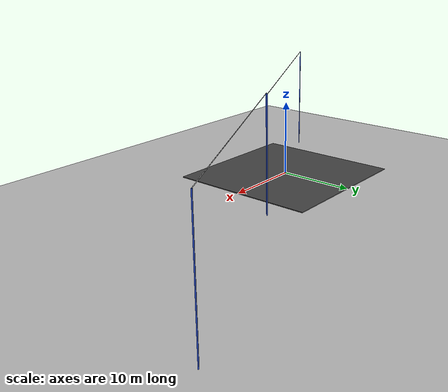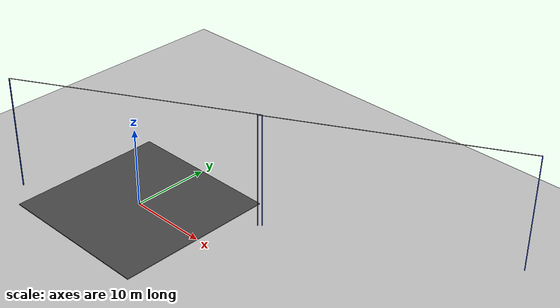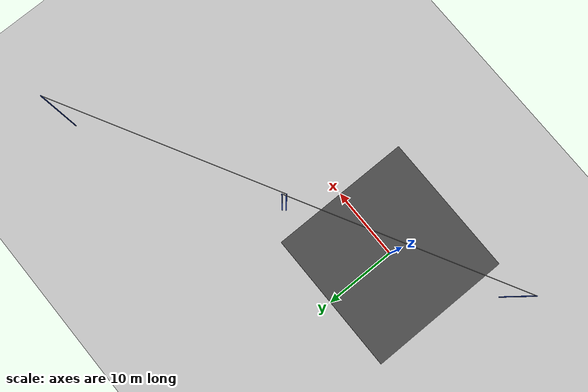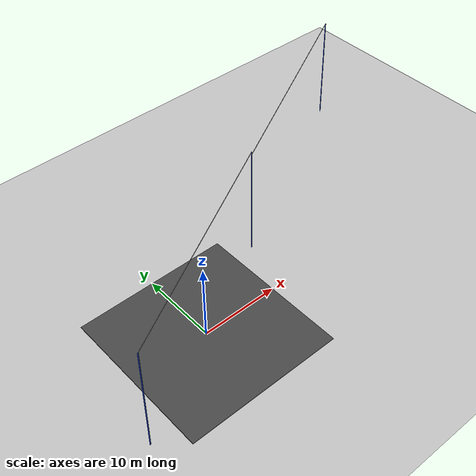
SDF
<sdf version="1.6">
 <world name="default">
  <light name="sun" type="directional">
   <pose>0 0 10 0 -0 0</pose>
   <diffuse>0.8 0.8 0.8 1</diffuse>
   <specular>0.2 0.2 0.2 1</specular>
   <attenuation>
    <range>1000</range>
    <constant>0.9</constant>
    <linear>0.01</linear>
    <quadratic>0.001</quadratic>
   </attenuation>
   <direction>-0.5 0.1 -0.9</direction>
  </light>
  <model name="ground_plane">
   <static>1</static>
   <link name="link">
    <collision name="collision">
     <geometry><plane><normal>0 0 1</normal><size>100 100</size></plane></geometry>
     <surface>
      <contact><collide_bitmask>65535</collide_bitmask></contact>
      <friction><ode><mu>100</mu><mu2>50</mu2></ode></friction>
     </surface>
    </collision>
    <visual name="visual">
     <cast_shadows>0</cast_shadows>
     <geometry><plane><normal>0 0 1</normal><size>100 100</size></plane></geometry>
     <material>
      <script><uri>file://media/materials/scripts/gazebo.material</uri><name>Gazebo/Grey</name></script>
     </material>
    </visual>
   </link>
  </model>
  <model name="asphalt_plane">
   <static>1</static>
   <link name="link">
    <collision name="collision"><geometry><box><size>20 20 0.1</size></box></geometry></collision>
    <visual name="visual">
     <cast_shadows>0</cast_shadows>
     <geometry><box><size>20 20 0.1</size></box></geometry>
     <material>
      <script>
       <uri>model://asphalt_plane/materials/scripts</uri>
       <uri>model://asphalt_plane/materials/textures</uri>
       <name>vrc/asphalt</name>
      </script>
     </material>
    </visual>
   </link>
  </model>
  <physics name="default_physics" default="0" type="ode">
   <ode>
    <solver>
     <type>quick</type>
     <iters>10</iters>
     <sor>1.3</sor>
     <use_dynamic_moi_rescaling>0</use_dynamic_moi_rescaling>
    </solver>
    <constraints>
     <cfm>0</cfm>
     <erp>0.2</erp>
     <contact_max_correcting_vel>100</contact_max_correcting_vel>
     <contact_surface_layer>0.001</contact_surface_layer>
    </constraints>
   </ode>
   <max_step_size>0.004</max_step_size>
   <real_time_factor>1</real_time_factor>
   <real_time_update_rate>250</real_time_update_rate>
  </physics>
  <gravity>0 0 -9.8066</gravity>
  <magnetic_field>6e-06 2.3e-05 -4.2e-05</magnetic_field>
  <atmosphere type="adiabatic"/>
  <scene><ambient>0.4 0.4 0.4 1</ambient><background>0.7 0.7 0.7 1</background><shadows>1</shadows></scene>
  <spherical_coordinates>
   <surface_model>EARTH_WGS84</surface_model>
   <latitude_deg>0</latitude_deg>
   <longitude_deg>0</longitude_deg>
   <elevation>0</elevation>
   <heading_deg>0</heading_deg>
  </spherical_coordinates>
  <model name="Powerline1">
   <link name="link">
    <inertial>
     <mass>0.240742</mass>
     <inertia>
      <ixx>3.38863</ixx>
      <ixy>0</ixy>
      <ixz>0</ixz>
      <iyy>3.38889</iyy>
      <iyz>0</iyz>
      <izz>0.00078828</izz>
     </inertia>
    </inertial>
    <pose>-15 0 7 0 -0 0</pose>
    <visual name="visual">
     <geometry><box><size>0.1 0.1 15</size></box></geometry>
     <material>
      <script><name>Gazebo/Blue</name><uri>file://media/materials/scripts/gazebo.material</uri></script>
      <shader type="pixel"><normal_map>__default__</normal_map></shader>
      <ambient>0.3 0.3 0.3 1</ambient>
      <diffuse>0.7 0.7 0.7 1</diffuse>
      <specular>0.01 0.01 0.01 1</specular>
      <emissive>0 0 0 1</emissive>
     </material>
    </visual>
    <collision name="collision">
     <geometry><box><size>0.1 0.1 15</size></box></geometry>
     <surface>
      <friction>
       <ode><mu>1</mu><mu2>1</mu2><fdir1>0 0 0</fdir1><slip1>0</slip1><slip2>0</slip2></ode>
       <torsional>
        <coefficient>1</coefficient>
        <patch_radius>0</patch_radius>
        <surface_radius>0</surface_radius>
        <use_patch_radius>1</use_patch_radius>
        <ode><slip>0</slip></ode>
       </torsional>
      </friction>
      <bounce><restitution_coefficient>0</restitution_coefficient><threshold>1e+06</threshold></bounce>
      <contact>
       <collide_without_contact>0</collide_without_contact>
       <collide_without_contact_bitmask>1</collide_without_contact_bitmask>
       <collide_bitmask>1</collide_bitmask>
       <ode>
        <soft_cfm>0</soft_cfm>
        <soft_erp>0.2</soft_erp>
        <kp>1e+13</kp>
        <kd>1</kd>
        <max_vel>0.01</max_vel>
        <min_depth>0</min_depth>
       </ode>
       <bullet>
        <split_impulse>1</split_impulse>
        <split_impulse_penetration_threshold>-0.01</split_impulse_penetration_threshold>
        <soft_cfm>0</soft_cfm>
        <soft_erp>0.2</soft_erp>
        <kp>1e+13</kp>
        <kd>1</kd>
       </bullet>
      </contact>
     </surface>
    </collision>
   </link>
   <link name="link_0">
    <inertial>
     <mass>1</mass>
     <inertia><ixx>0.145833</ixx><ixy>0</ixy><ixz>0</ixz><iyy>0.145833</iyy><iyz>0</iyz><izz>0.125</izz></inertia>
    </inertial>
    <pose>0 0 14.5 0 -1.56987 0</pose>
    <visual name="visual">
     <geometry><cylinder><radius>0.035</radius><length>30</length></cylinder></geometry>
     <material>
      <lighting>1</lighting>
      <script><uri>file://media/materials/scripts/gazebo.material</uri><name>Gazebo/Grey</name></script>
      <shader type="pixel"><normal_map>__default__</normal_map></shader>
      <ambient>0.3 0.3 0.3 1</ambient>
      <diffuse>0.7 0.7 0.7 1</diffuse>
      <specular>0.01 0.01 0.01 1</specular>
      <emissive>0 0 0 1</emissive>
     </material>
    </visual>
    <collision name="collision">
     <geometry><cylinder><radius>0.035</radius><length>30</length></cylinder></geometry>
     <surface>
      <friction>
       <ode><mu>1</mu><mu2>1</mu2><fdir1>0 0 0</fdir1><slip1>0</slip1><slip2>0</slip2></ode>
       <torsional>
        <coefficient>1</coefficient>
        <patch_radius>0</patch_radius>
        <surface_radius>0</surface_radius>
        <use_patch_radius>1</use_patch_radius>
        <ode><slip>0</slip></ode>
       </torsional>
      </friction>
      <bounce><restitution_coefficient>0</restitution_coefficient><threshold>1e+06</threshold></bounce>
      <contact>
       <collide_without_contact>0</collide_without_contact>
       <collide_without_contact_bitmask>1</collide_without_contact_bitmask>
       <collide_bitmask>1</collide_bitmask>
       <ode>
        <soft_cfm>0</soft_cfm>
        <soft_erp>0.2</soft_erp>
        <kp>1e+13</kp>
        <kd>1</kd>
        <max_vel>0.01</max_vel>
        <min_depth>0</min_depth>
       </ode>
       <bullet>
        <split_impulse>1</split_impulse>
        <split_impulse_penetration_threshold>-0.01</split_impulse_penetration_threshold>
        <soft_cfm>0</soft_cfm>
        <soft_erp>0.2</soft_erp>
        <kp>1e+13</kp>
        <kd>1</kd>
       </bullet>
      </contact>
     </surface>
    </collision>
   </link>
   <link name="link_clone">
    <inertial>
     <mass>0.240742</mass>
     <inertia>
      <ixx>3.38863</ixx>
      <ixy>0</ixy>
      <ixz>0</ixz>
      <iyy>3.38889</iyy>
      <iyz>0</iyz>
      <izz>0.00078828</izz>
     </inertia>
    </inertial>
    <pose>15 0 7 1e-05 -0 0</pose>
    <visual name="visual">
     <geometry><box><size>0.1 0.1 15</size></box></geometry>
     <material>
      <script><name>Gazebo/Blue</name><uri>file://media/materials/scripts/gazebo.material</uri></script>
      <shader type="pixel"><normal_map>__default__</normal_map></shader>
      <ambient>0.3 0.3 0.3 1</ambient>
      <diffuse>0.7 0.7 0.7 1</diffuse>
      <specular>0.01 0.01 0.01 1</specular>
      <emissive>0 0 0 1</emissive>
     </material>
    </visual>
    <collision name="collision">
     <geometry><box><size>0.1 0.1 15</size></box></geometry>
     <surface>
      <friction>
       <ode><mu>1</mu><mu2>1</mu2><fdir1>0 0 0</fdir1><slip1>0</slip1><slip2>0</slip2></ode>
       <torsional>
        <coefficient>1</coefficient>
        <patch_radius>0</patch_radius>
        <surface_radius>0</surface_radius>
        <use_patch_radius>1</use_patch_radius>
        <ode><slip>0</slip></ode>
       </torsional>
      </friction>
      <bounce><restitution_coefficient>0</restitution_coefficient><threshold>1e+06</threshold></bounce>
      <contact>
       <collide_without_contact>0</collide_without_contact>
       <collide_without_contact_bitmask>1</collide_without_contact_bitmask>
       <collide_bitmask>1</collide_bitmask>
       <ode>
        <soft_cfm>0</soft_cfm>
        <soft_erp>0.2</soft_erp>
        <kp>1e+13</kp>
        <kd>1</kd>
        <max_vel>0.01</max_vel>
        <min_depth>0</min_depth>
       </ode>
       <bullet>
        <split_impulse>1</split_impulse>
        <split_impulse_penetration_threshold>-0.01</split_impulse_penetration_threshold>
        <soft_cfm>0</soft_cfm>
        <soft_erp>0.2</soft_erp>
        <kp>1e+13</kp>
        <kd>1</kd>
       </bullet>
      </contact>
     </surface>
    </collision>
   </link>
   <joint name="link_0_JOINT_0" type="fixed">
    <parent>link_0</parent>
    <child>link</child>
    <physics>
     <ode><limit><cfm>0</cfm><erp>0.2</erp></limit><suspension><cfm>0</cfm><erp>0.2</erp></suspension></ode>
    </physics>
   </joint>
   <joint name="link_0_JOINT_1" type="revolute">
    <parent>link_0</parent>
    <child>link_clone</child>
    <axis>
     <xyz>1 0 0</xyz>
     <use_parent_model_frame>0</use_parent_model_frame>
     <limit>
      <lower>-1.79769e+308</lower>
      <upper>1.79769e+308</upper>
      <effort>-1</effort>
      <velocity>-1</velocity>
     </limit>
     <dynamics>
      <spring_reference>0</spring_reference>
      <spring_stiffness>0</spring_stiffness>
      <damping>0</damping>
     </dynamics>
    </axis>
    <physics>
     <ode><limit><cfm>0</cfm><erp>0.2</erp></limit><suspension><cfm>0</cfm><erp>0.2</erp></suspension></ode>
    </physics>
   </joint>
   <static>1</static>
   <pose>3.8e-05 3e-06 0 0 -0 0.5</pose>
  </model>
  <model name="Powerline1_clone">
   <link name="link">
    <inertial>
     <mass>0.240742</mass>
     <inertia>
      <ixx>3.38863</ixx>
      <ixy>0</ixy>
      <ixz>0</ixz>
      <iyy>3.38889</iyy>
      <iyz>0</iyz>
      <izz>0.00078828</izz>
     </inertia>
    </inertial>
    <pose>-15 0 7 0 -0 0</pose>
    <visual name="visual">
     <geometry><box><size>0.1 0.1 15</size></box></geometry>
     <material>
      <script><name>Gazebo/Blue</name><uri>file://media/materials/scripts/gazebo.material</uri></script>
      <shader type="pixel"><normal_map>__default__</normal_map></shader>
      <ambient>0.3 0.3 0.3 1</ambient>
      <diffuse>0.7 0.7 0.7 1</diffuse>
      <specular>0.01 0.01 0.01 1</specular>
      <emissive>0 0 0 1</emissive>
     </material>
    </visual>
    <collision name="collision">
     <geometry><box><size>0.1 0.1 15</size></box></geometry>
     <surface>
      <friction>
       <ode><mu>1</mu><mu2>1</mu2><fdir1>0 0 0</fdir1><slip1>0</slip1><slip2>0</slip2></ode>
       <torsional>
        <coefficient>1</coefficient>
        <patch_radius>0</patch_radius>
        <surface_radius>0</surface_radius>
        <use_patch_radius>1</use_patch_radius>
        <ode><slip>0</slip></ode>
       </torsional>
      </friction>
      <bounce><restitution_coefficient>0</restitution_coefficient><threshold>1e+06</threshold></bounce>
      <contact>
       <collide_without_contact>0</collide_without_contact>
       <collide_without_contact_bitmask>1</collide_without_contact_bitmask>
       <collide_bitmask>1</collide_bitmask>
       <ode>
        <soft_cfm>0</soft_cfm>
        <soft_erp>0.2</soft_erp>
        <kp>1e+13</kp>
        <kd>1</kd>
        <max_vel>0.01</max_vel>
        <min_depth>0</min_depth>
       </ode>
       <bullet>
        <split_impulse>1</split_impulse>
        <split_impulse_penetration_threshold>-0.01</split_impulse_penetration_threshold>
        <soft_cfm>0</soft_cfm>
        <soft_erp>0.2</soft_erp>
        <kp>1e+13</kp>
        <kd>1</kd>
       </bullet>
      </contact>
     </surface>
    </collision>
   </link>
   <link name="link_0">
    <inertial>
     <mass>1</mass>
     <inertia><ixx>0.145833</ixx><ixy>0</ixy><ixz>0</ixz><iyy>0.145833</iyy><iyz>0</iyz><izz>0.125</izz></inertia>
    </inertial>
    <pose>0 0 14.5 0 -1.56987 0</pose>
    <visual name="visual">
     <geometry><cylinder><radius>0.035</radius><length>30</length></cylinder></geometry>
     <material>
      <lighting>1</lighting>
      <script><uri>file://media/materials/scripts/gazebo.material</uri><name>Gazebo/Grey</name></script>
      <shader type="pixel"><normal_map>__default__</normal_map></shader>
      <ambient>0.3 0.3 0.3 1</ambient>
      <diffuse>0.7 0.7 0.7 1</diffuse>
      <specular>0.01 0.01 0.01 1</specular>
      <emissive>0 0 0 1</emissive>
     </material>
    </visual>
    <collision name="collision">
     <geometry><cylinder><radius>0.035</radius><length>30</length></cylinder></geometry>
     <surface>
      <friction>
       <ode><mu>1</mu><mu2>1</mu2><fdir1>0 0 0</fdir1><slip1>0</slip1><slip2>0</slip2></ode>
       <torsional>
        <coefficient>1</coefficient>
        <patch_radius>0</patch_radius>
        <surface_radius>0</surface_radius>
        <use_patch_radius>1</use_patch_radius>
        <ode><slip>0</slip></ode>
       </torsional>
      </friction>
      <bounce><restitution_coefficient>0</restitution_coefficient><threshold>1e+06</threshold></bounce>
      <contact>
       <collide_without_contact>0</collide_without_contact>
       <collide_without_contact_bitmask>1</collide_without_contact_bitmask>
       <collide_bitmask>1</collide_bitmask>
       <ode>
        <soft_cfm>0</soft_cfm>
        <soft_erp>0.2</soft_erp>
        <kp>1e+13</kp>
        <kd>1</kd>
        <max_vel>0.01</max_vel>
        <min_depth>0</min_depth>
       </ode>
       <bullet>
        <split_impulse>1</split_impulse>
        <split_impulse_penetration_threshold>-0.01</split_impulse_penetration_threshold>
        <soft_cfm>0</soft_cfm>
        <soft_erp>0.2</soft_erp>
        <kp>1e+13</kp>
        <kd>1</kd>
       </bullet>
      </contact>
     </surface>
    </collision>
   </link>
   <link name="link_clone">
    <inertial>
     <mass>0.240742</mass>
     <inertia>
      <ixx>3.38863</ixx>
      <ixy>0</ixy>
      <ixz>0</ixz>
      <iyy>3.38889</iyy>
      <iyz>0</iyz>
      <izz>0.00078828</izz>
     </inertia>
    </inertial>
    <pose>15 0 7 1e-05 -0 0</pose>
    <visual name="visual">
     <geometry><box><size>0.1 0.1 15</size></box></geometry>
     <material>
      <script><name>Gazebo/Blue</name><uri>file://media/materials/scripts/gazebo.material</uri></script>
      <shader type="pixel"><normal_map>__default__</normal_map></shader>
      <ambient>0.3 0.3 0.3 1</ambient>
      <diffuse>0.7 0.7 0.7 1</diffuse>
      <specular>0.01 0.01 0.01 1</specular>
      <emissive>0 0 0 1</emissive>
     </material>
    </visual>
    <collision name="collision">
     <geometry><box><size>0.1 0.1 15</size></box></geometry>
     <surface>
      <friction>
       <ode><mu>1</mu><mu2>1</mu2><fdir1>0 0 0</fdir1><slip1>0</slip1><slip2>0</slip2></ode>
       <torsional>
        <coefficient>1</coefficient>
        <patch_radius>0</patch_radius>
        <surface_radius>0</surface_radius>
        <use_patch_radius>1</use_patch_radius>
        <ode><slip>0</slip></ode>
       </torsional>
      </friction>
      <bounce><restitution_coefficient>0</restitution_coefficient><threshold>1e+06</threshold></bounce>
      <contact>
       <collide_without_contact>0</collide_without_contact>
       <collide_without_contact_bitmask>1</collide_without_contact_bitmask>
       <collide_bitmask>1</collide_bitmask>
       <ode>
        <soft_cfm>0</soft_cfm>
        <soft_erp>0.2</soft_erp>
        <kp>1e+13</kp>
        <kd>1</kd>
        <max_vel>0.01</max_vel>
        <min_depth>0</min_depth>
       </ode>
       <bullet>
        <split_impulse>1</split_impulse>
        <split_impulse_penetration_threshold>-0.01</split_impulse_penetration_threshold>
        <soft_cfm>0</soft_cfm>
        <soft_erp>0.2</soft_erp>
        <kp>1e+13</kp>
        <kd>1</kd>
       </bullet>
      </contact>
     </surface>
    </collision>
   </link>
   <joint name="link_0_JOINT_0" type="fixed">
    <parent>link_0</parent>
    <child>link</child>
    <physics>
     <ode><limit><cfm>0</cfm><erp>0.2</erp></limit><suspension><cfm>0</cfm><erp>0.2</erp></suspension></ode>
    </physics>
   </joint>
   <joint name="link_0_JOINT_1" type="revolute">
    <parent>link_0</parent>
    <child>link_clone</child>
    <axis>
     <xyz>1 0 0</xyz>
     <use_parent_model_frame>0</use_parent_model_frame>
     <limit>
      <lower>-1.79769e+308</lower>
      <upper>1.79769e+308</upper>
      <effort>-1</effort>
      <velocity>-1</velocity>
     </limit>
     <dynamics>
      <spring_reference>0</spring_reference>
      <spring_stiffness>0</spring_stiffness>
      <damping>0</damping>
     </dynamics>
    </axis>
    <physics>
     <ode><limit><cfm>0</cfm><erp>0.2</erp></limit><suspension><cfm>0</cfm><erp>0.2</erp></suspension></ode>
    </physics>
   </joint>
   <static>1</static>
   <pose>26 14 0 0 -0 0.5</pose>
  </model>
  <audio><device>default</device></audio>
 </world>
</sdf>
